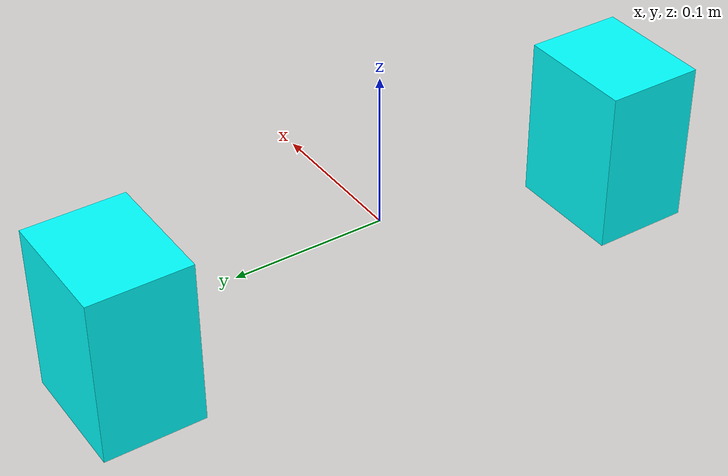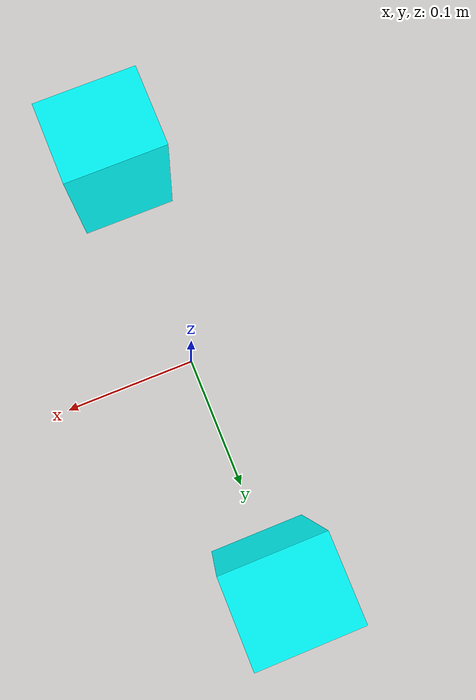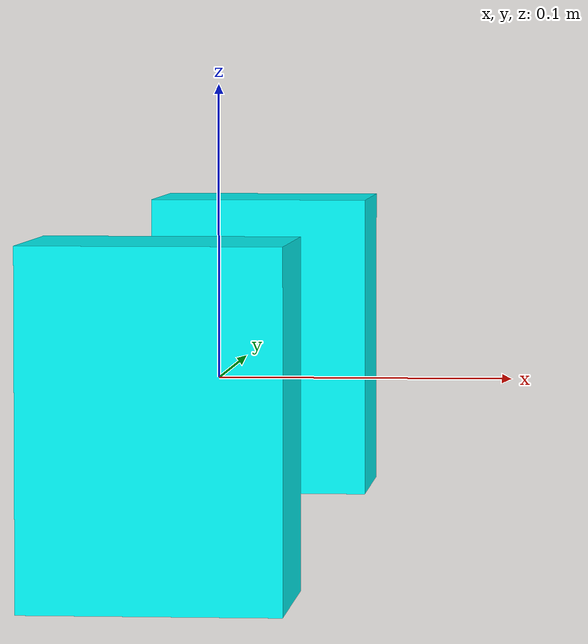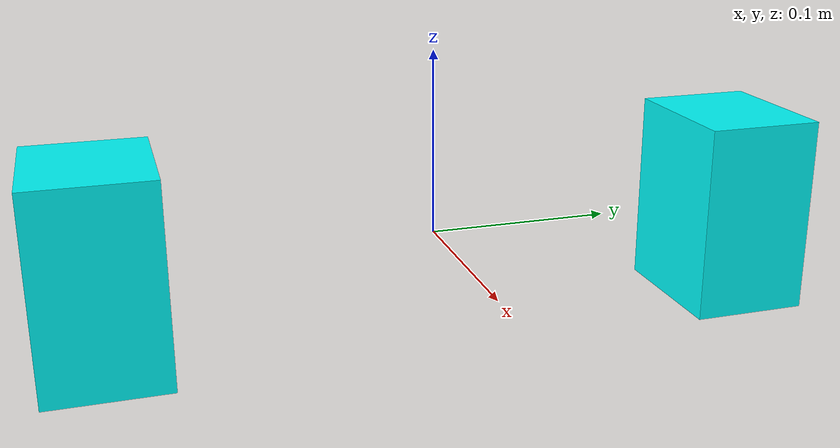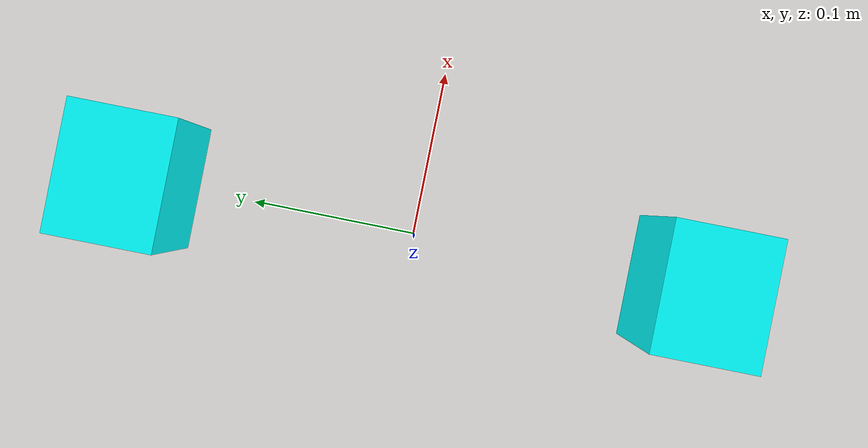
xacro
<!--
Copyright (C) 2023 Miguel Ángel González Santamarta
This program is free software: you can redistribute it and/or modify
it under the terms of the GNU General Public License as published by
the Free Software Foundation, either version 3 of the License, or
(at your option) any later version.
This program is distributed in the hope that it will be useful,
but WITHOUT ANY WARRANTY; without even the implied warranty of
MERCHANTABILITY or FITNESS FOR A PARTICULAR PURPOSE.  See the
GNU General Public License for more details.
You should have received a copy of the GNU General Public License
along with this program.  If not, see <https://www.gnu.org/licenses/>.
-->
<?xml version="1.0"?>

<robot name="speak_external" xmlns:xacro="http://www.ros.org/wiki/xacro">

  <link name="speak_external_link">

  </link>

  <gazebo reference="right_speak_link">
    <material>Gazebo/Black</material>
  </gazebo>

  <gazebo reference="left_speak_link">
    <material>Gazebo/Black</material>
  </gazebo>

  <link name="right_speak_link">
    <inertial>
      <origin xyz="0 0 0" rpy="0 0 0"/>
      <mass value="0.01"/>
      <inertia ixx="0.001"  ixy="0"  ixz="0" iyy="0.001" iyz="0" izz="0.001" />
    </inertial>
    <visual>
      <origin xyz="0 0 0" rpy="0 0 0" />
      <geometry>
        <box size="0.08 0.065 0.11" />
      </geometry>
      <material name="darkgrey">
        <color rgba="0 1.0 1.0 1.0"/>
      </material>
    </visual>
    <collision>
      <origin xyz="0 0 0" rpy="0 0 0"/>
      <geometry>
        <box size="0.08 0.065 0.11" />
      </geometry>
    </collision>
  </link>

  <link name="left_speak_link">
    <inertial>
      <origin xyz="0 0 0" rpy="0 0 0"/>
      <mass value="0.01"/>
      <inertia ixx="0.001"  ixy="0"  ixz="0" iyy="0.001" iyz="0" izz="0.001" />
    </inertial>
    <visual>
      <origin xyz="0 0 0" rpy="0 0 0" />
      <geometry>
        <box size="0.08 0.065 0.11" />
      </geometry>
      <material name="darkgrey">
        <color rgba="0 1.0 1.0 1.0"/>
      </material>
    </visual>
    <collision>
      <origin xyz="0 0 0" rpy="0 0 0"/>
      <geometry>
        <box size="0.08 0.065 0.11" />
      </geometry>
    </collision>
  </link>

  <joint name="right_speak_joint" type="fixed">
      <parent link="speak_external_link"/>
      <child link="right_speak_link"/>
      <origin xyz="0 0.1775 0"/>
  </joint>

  <joint name="left_speak_joint" type="fixed">
      <parent link="speak_external_link"/>
      <child link="left_speak_link"/>
      <origin xyz="0 -0.1775 0"/>
  </joint>

</robot>
